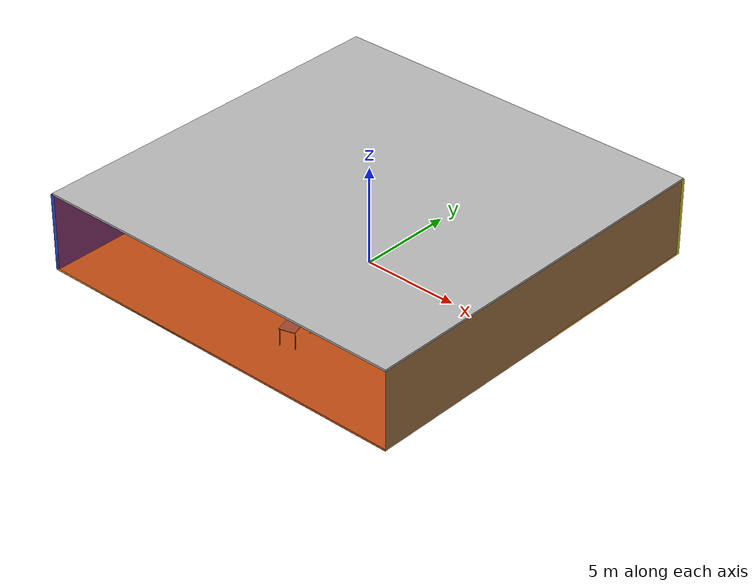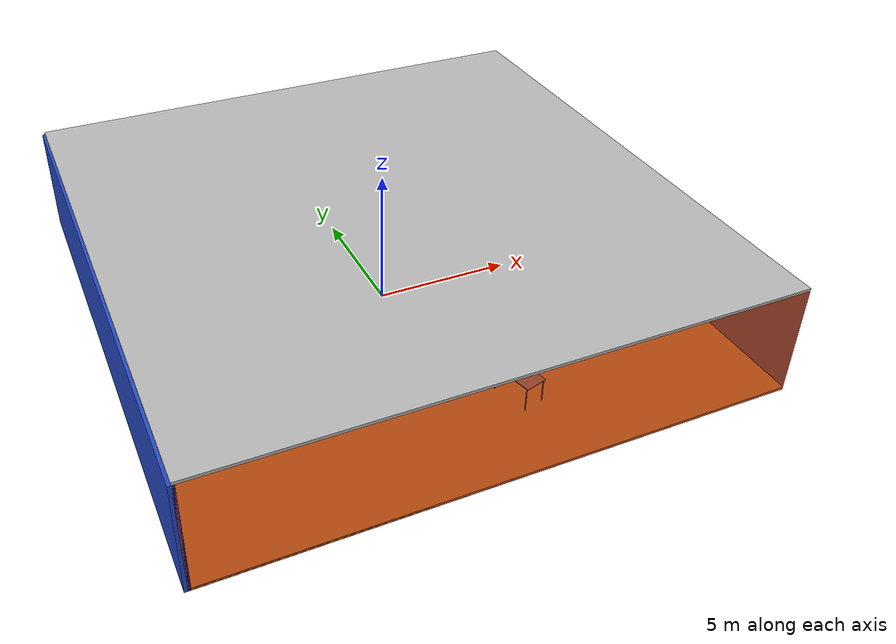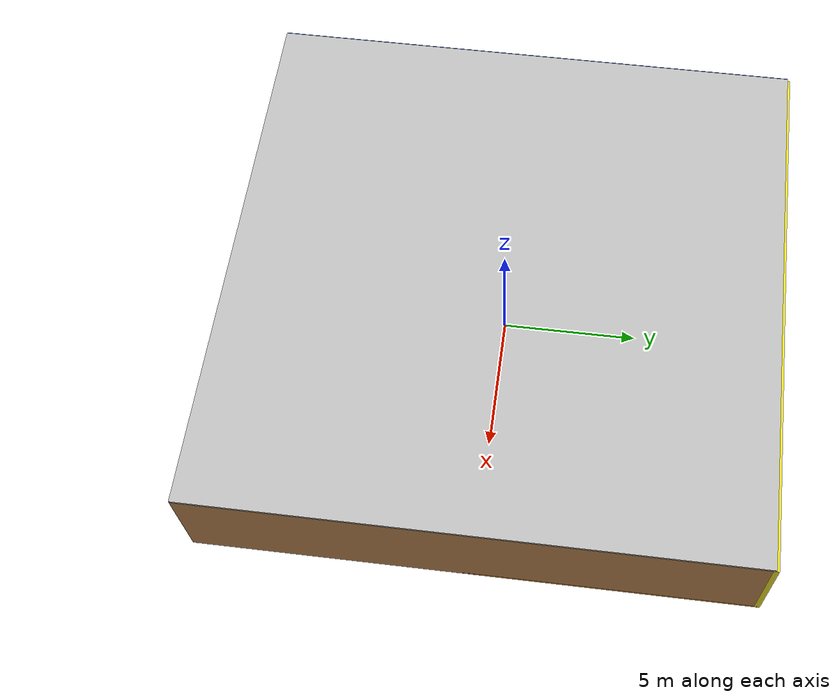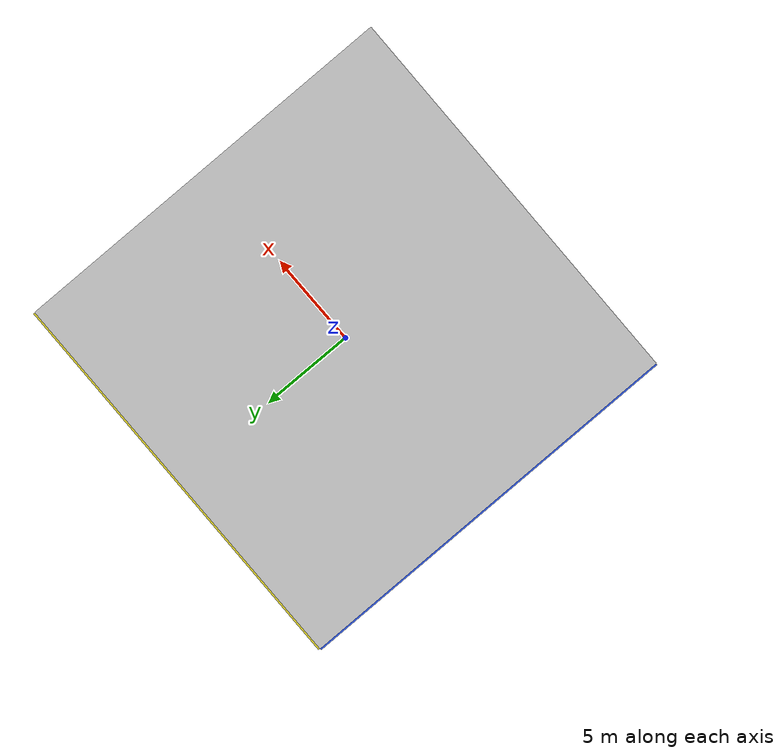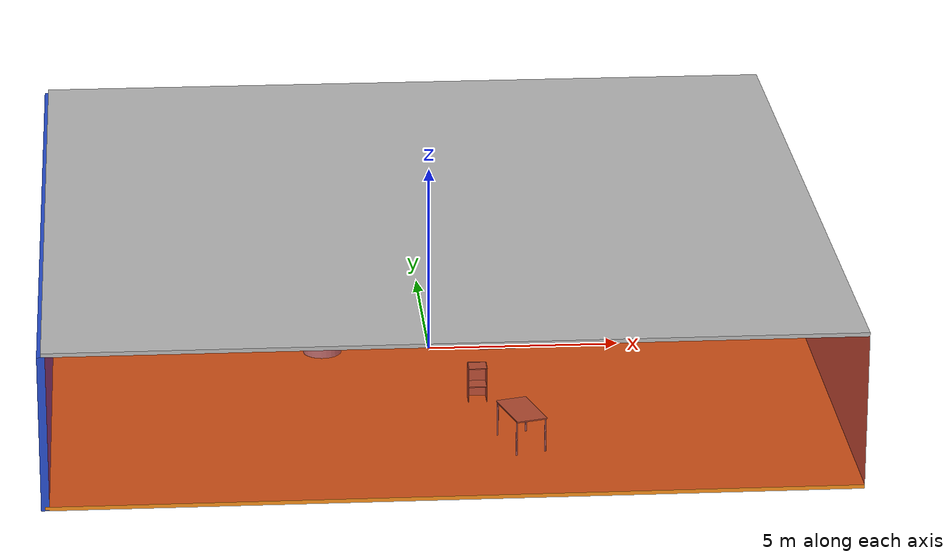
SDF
<sdf version="1.4">
 <world name="default">
  <physics type="ode">
   <max_step_size>0.001</max_step_size>
   <real_time_factor>1</real_time_factor>
   <real_time_update_rate>1000</real_time_update_rate>
   <gravity>0 0 -9.8</gravity>
  </physics>
  <scene><ambient>0.4 0.4 0.4 1</ambient><background>0.7 0.7 0.7 1</background><shadows>1</shadows></scene>
  <model name="Surrounding">
   <static>1</static>
   <link name="Ceiling">
    <collision name="Ceiling_Collision"><geometry><box><size>20 20 0.1</size></box></geometry></collision>
    <visual name="Ceiling_Visual">
     <geometry><box><size>20 20 0.1</size></box></geometry>
     <material>
      <script><uri>file://media/materials/scripts/gazebo.material</uri><name>Gazebo/CloudySky</name></script>
     </material>
    </visual>
    <pose>0 0 4.05 0 0 0</pose>
   </link>
   <link name="Wall_South">
    <collision name="Wall_South_Collision">
     <geometry><box><size>20 0 4</size></box></geometry>
     <pose>0 0 2 0 -0 0</pose>
    </collision>
    <visual name="Wall_South_Visual">
     <pose>0 0 2 0 -0 0</pose>
     <geometry><box><size>20 0 4</size></box></geometry>
     <material>
      <script><uri>file://media/materials/scripts/gazebo.material</uri><name>Gazebo/RedTransparent</name></script>
     </material>
    </visual>
    <velocity_decay><linear>0</linear><angular>0</angular></velocity_decay>
    <pose>0 -10 0 0 -0 0</pose>
   </link>
   <link name="Wall_East">
    <collision name="Wall_21_Collision">
     <geometry><box><size>20 0 4</size></box></geometry>
     <pose>0 0 2 0 -0 0</pose>
    </collision>
    <visual name="Wall_21_Visual">
     <pose>0 0 2 0 -0 0</pose>
     <geometry><box><size>20 0 4</size></box></geometry>
     <material>
      <script><uri>file://media/materials/scripts/gazebo.material</uri><name>Gazebo/Wood</name></script>
     </material>
    </visual>
    <velocity_decay><linear>0</linear><angular>0</angular></velocity_decay>
    <pose>10 0 0 0 -0 1.5708</pose>
   </link>
   <link name="Wall_North">
    <collision name="Wall_22_Collision">
     <geometry><box><size>20 0.2 4</size></box></geometry>
     <pose>0 0 2 0 -0 0</pose>
    </collision>
    <visual name="Wall_22_Visual">
     <pose>0 0 2 0 -0 0</pose>
     <geometry><box><size>20 0.2 4</size></box></geometry>
     <material>
      <script><uri>file://media/materials/scripts/gazebo.material</uri><name>Gazebo/YellowGlow</name></script>
     </material>
    </visual>
    <velocity_decay><linear>0</linear><angular>0</angular></velocity_decay>
    <pose>0 10 0 0 -0 0</pose>
   </link>
   <link name="Wall_West">
    <collision name="Wall_23_Collision">
     <geometry><box><size>20 0.2 4</size></box></geometry>
     <pose>0 0 2 0 -0 0</pose>
    </collision>
    <visual name="Wall_23_Visual">
     <pose>0 0 2 0 -0 0</pose>
     <geometry><box><size>20 0.2 4</size></box></geometry>
     <material>
      <script><uri>file://media/materials/scripts/gazebo.material</uri><name>Gazebo/BlueLaser</name></script>
     </material>
    </visual>
    <velocity_decay><linear>0</linear><angular>0</angular></velocity_decay>
    <pose>-10 0 0 0 0 -1.5708</pose>
   </link>
   <link name="Ground_link">
    <collision name="collision">
     <pose>0 0 .05 0 -0 0</pose>
     <geometry><box><size>20 20 0.1</size></box></geometry>
    </collision>
    <visual name="visual">
     <pose>0 0 .05 0 -0 0</pose>
     <geometry><box><size>20 20 0.1</size></box></geometry>
     <material>
      <script><uri>file://media/materials/scripts/gazebo.material</uri><name>Gazebo/Orange</name></script>
     </material>
    </visual>
   </link>
   <static>1</static>
  </model>
  <spherical_coordinates>
   <surface_model>EARTH_WGS84</surface_model>
   <latitude_deg>0</latitude_deg>
   <longitude_deg>0</longitude_deg>
   <elevation>0</elevation>
   <heading_deg>0</heading_deg>
  </spherical_coordinates>
  <light name="lightball_0" type="diffuse">
   <diffuse>0.8 0.8 0.8 1</diffuse>
   <specular>0.2 0.2 0.2 1</specular>
   <attenuation>
    <range>100</range>
    <constant>0.7</constant>
    <linear>0.01</linear>
    <quadratic>0.001</quadratic>
   </attenuation>
   <direction>-0.5 0.1 -0.9</direction>
   <pose>-8.1750219609 -0.994581331632 3.76717767849 0 0 0</pose>
  </light>
  <light name="lightball_1" type="diffuse">
   <diffuse>0.8 0.8 0.8 1</diffuse>
   <specular>0.2 0.2 0.2 1</specular>
   <attenuation>
    <range>100</range>
    <constant>0.7</constant>
    <linear>0.01</linear>
    <quadratic>0.001</quadratic>
   </attenuation>
   <direction>-0.5 0.1 -0.9</direction>
   <pose>-7.49363259658 -1.19465149656 1.64758789317 0 0 0</pose>
  </light>
  <light name="lightball_2" type="diffuse">
   <diffuse>0.8 0.8 0.8 1</diffuse>
   <specular>0.2 0.2 0.2 1</specular>
   <attenuation>
    <range>100</range>
    <constant>0.7</constant>
    <linear>0.01</linear>
    <quadratic>0.001</quadratic>
   </attenuation>
   <direction>-0.5 0.1 -0.9</direction>
   <pose>-3.76112519172 0.0347102981407 3.82514936522 0 0 0</pose>
  </light>
  <light name="lightball_3" type="diffuse">
   <diffuse>0.8 0.8 0.8 1</diffuse>
   <specular>0.2 0.2 0.2 1</specular>
   <attenuation>
    <range>100</range>
    <constant>0.7</constant>
    <linear>0.01</linear>
    <quadratic>0.001</quadratic>
   </attenuation>
   <direction>-0.5 0.1 -0.9</direction>
   <pose>-5.76501389016 4.88695822047 1.07834786567 0 0 0</pose>
  </light>
  <light name="lightball_4" type="diffuse">
   <diffuse>0.8 0.8 0.8 1</diffuse>
   <specular>0.2 0.2 0.2 1</specular>
   <attenuation>
    <range>100</range>
    <constant>0.7</constant>
    <linear>0.01</linear>
    <quadratic>0.001</quadratic>
   </attenuation>
   <direction>-0.5 0.1 -0.9</direction>
   <pose>5.35878651306 3.44587681985 1.88586030055 0 0 0</pose>
  </light>
  <light name="lightball_5" type="diffuse">
   <diffuse>0.8 0.8 0.8 1</diffuse>
   <specular>0.2 0.2 0.2 1</specular>
   <attenuation>
    <range>100</range>
    <constant>0.7</constant>
    <linear>0.01</linear>
    <quadratic>0.001</quadratic>
   </attenuation>
   <direction>-0.5 0.1 -0.9</direction>
   <pose>4.59006269359 4.66943095998 3.23542803439 0 0 0</pose>
  </light>
  <light name="lightball_6" type="diffuse">
   <diffuse>0.8 0.8 0.8 1</diffuse>
   <specular>0.2 0.2 0.2 1</specular>
   <attenuation>
    <range>100</range>
    <constant>0.7</constant>
    <linear>0.01</linear>
    <quadratic>0.001</quadratic>
   </attenuation>
   <direction>-0.5 0.1 -0.9</direction>
   <pose>9.98481536459 2.72520035438 1.58770300228 0 0 0</pose>
  </light>
  <light name="lightball_7" type="diffuse">
   <diffuse>0.8 0.8 0.8 1</diffuse>
   <specular>0.2 0.2 0.2 1</specular>
   <attenuation>
    <range>100</range>
    <constant>0.7</constant>
    <linear>0.01</linear>
    <quadratic>0.001</quadratic>
   </attenuation>
   <direction>-0.5 0.1 -0.9</direction>
   <pose>-9.04362554884 1.66253579772 2.91459784075 0 0 0</pose>
  </light>
  <include>
   <uri>model://robocup_3Dsim_goal</uri>
   <pose>-3.921695372 6.83870520399 0 0 0 2.77781894821</pose>
  </include>
  <include>
   <uri>model://textured_shapes</uri>
   <pose>-1.97351189887 0.939967721864 0 0 0 2.53328341457</pose>
  </include>
  <include><uri>model://cabinet</uri><pose>-1.48149367268 8.26386178551 0 0 0 1.3881551085</pose></include>
  <include><uri>model://table</uri><pose>1.8441642237 -6.81627438869 0 0 0 1.84470332793</pose></include>
  <include><uri>model://cabinet</uri><pose>0.974134088673 -3.83541622137 0 0 0 1.55980407293</pose></include>
  <include>
   <uri>model://textured_shapes</uri>
   <pose>1.66324305728 1.5641296236 0 0 0 0.0503319916211</pose>
  </include>
  <include><uri>model://cabinet</uri><pose>1.49423997502 7.85553278691 0 0 0 0.705730093492</pose></include>
 </world>
</sdf>

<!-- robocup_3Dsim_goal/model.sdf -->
<sdf version="1.5">
  <model name="robocup_3d_goal">
    <static>true</static>
    <link name="left_post">
      <pose>0 1.05 0.45 0 0 0</pose>
      <collision name="collision">
        <geometry>
          <cylinder>
            <radius>0.05</radius>
            <length>0.9</length>
          </cylinder>
        </geometry>
      </collision>
      <visual name="visual">
        <geometry>
          <cylinder>
            <radius>0.05</radius>
            <length>0.9</length>
          </cylinder>
        </geometry>
        <material>
          <script>
            <uri>file://media/materials/scripts/gazebo.material</uri>
            <name>Gazebo/ZincYellow</name>
          </script>
        </material>
      </visual>
    </link>
    <link name="left_support_horiz_lower">
      <pose>0.30 1.05 0.01 0 0 0</pose>
      <collision name="collision">
        <geometry>
          <box>
            <size>0.50 0.02 0.02</size>
          </box>
        </geometry>
      </collision>
      <visual name="visual">
        <geometry>
          <box>
            <size>0.50 0.02 0.02</size>
          </box>
        </geometry>
        <material>
          <script>
            <uri>file://media/materials/scripts/gazebo.material</uri>
            <name>Gazebo/White</name>
          </script>
        </material>
      </visual>
    </link>
    <link name="left_support_horiz_upper">
      <pose>0.30 1.05 0.79 0 0 0</pose>
      <collision name="collision">
        <geometry>
          <box>
            <size>0.50 0.02 0.02</size>
          </box>
        </geometry>
      </collision>
      <visual name="visual">
        <geometry>
          <box>
            <size>0.50 0.02 0.02</size>
          </box>
        </geometry>
        <material>
          <script>
            <uri>file://media/materials/scripts/gazebo.material</uri>
            <name>Gazebo/White</name>
          </script>
        </material>
      </visual>
    </link>
    <link name="left_support_vertical">
      <pose>0.56 1.05 0.4 0 1.5708 0</pose>
      <collision name="collision">
        <geometry>
          <box>
            <size>0.80 0.02 0.02</size>
          </box>
        </geometry>
      </collision>
      <visual name="visual">
        <geometry>
          <box>
            <size>0.80 0.02 0.02</size>
          </box>
        </geometry>
        <material>
          <script>
            <uri>file://media/materials/scripts/gazebo.material</uri>
            <name>Gazebo/White</name>
          </script>
        </material>
      </visual>
    </link>
    <link name="right_support_horiz_lower">
      <pose>0.30 -1.05 0.01 0 0 0</pose>
      <collision name="collision">
        <geometry>
          <box>
            <size>0.50 0.02 0.02</size>
          </box>
        </geometry>
      </collision>
      <visual name="visual">
        <geometry>
          <box>
            <size>0.50 0.02 0.02</size>
          </box>
        </geometry>
        <material>
          <script>
            <uri>file://media/materials/scripts/gazebo.material</uri>
            <name>Gazebo/White</name>
          </script>
        </material>
      </visual>
    </link>
    <link name="right_support_horiz_upper">
      <pose>0.30 -1.05 0.79 0 0 0</pose>
      <collision name="collision">
        <geometry>
          <box>
            <size>0.50 0.02 0.02</size>
          </box>
        </geometry>
      </collision>
      <visual name="visual">
        <geometry>
          <box>
            <size>0.50 0.02 0.02</size>
          </box>
        </geometry>
        <material>
          <script>
            <uri>file://media/materials/scripts/gazebo.material</uri>
            <name>Gazebo/White</name>
          </script>
        </material>
      </visual>
    </link>
    <link name="right_support_vertical">
      <pose>0.56 -1.05 0.4 0 1.5708 0</pose>
      <collision name="collision">
        <geometry>
          <box>
            <size>0.80 0.02 0.02</size>
          </box>
        </geometry>
      </collision>
      <visual name="visual">
        <geometry>
          <box>
            <size>0.80 0.02 0.02</size>
          </box>
        </geometry>
        <material>
          <script>
            <uri>file://media/materials/scripts/gazebo.material</uri>
            <name>Gazebo/White</name>
          </script>
        </material>
      </visual>
    </link>
    <link name="center_support_horiz_lower">
      <pose>0.56 0 0.01 0 1.5708 0</pose>
      <collision name="collision">
        <geometry>
          <box>
            <size>0.02 2.08 0.02</size>
          </box>
        </geometry>
      </collision>
      <visual name="visual">
        <geometry>
          <box>
            <size>0.02 2.08 0.02</size>
          </box>
        </geometry>
        <material>
          <script>
            <uri>file://media/materials/scripts/gazebo.material</uri>
            <name>Gazebo/White</name>
          </script>
        </material>
      </visual>
    </link>
    <link name="center_support_horiz_upper">
      <pose>0.56 0 0.79 0 1.5708 0</pose>
      <collision name="collision">
        <geometry>
          <box>
            <size>0.02 2.08 0.02</size>
          </box>
        </geometry>
      </collision>
      <visual name="visual">
        <geometry>
          <box>
            <size>0.02 2.08 0.02</size>
          </box>
        </geometry>
        <material>
          <script>
            <uri>file://media/materials/scripts/gazebo.material</uri>
            <name>Gazebo/White</name>
          </script>
        </material>
      </visual>
    </link>
    <link name="right_post">
      <pose>0 -1.05 0.45 0 0 0</pose>
      <collision name="collision">
        <geometry>
          <cylinder>
            <radius>0.05</radius>
            <length>0.9</length>
          </cylinder>
        </geometry>
      </collision>
      <visual name="visual">
        <geometry>
          <cylinder>
            <radius>0.05</radius>
            <length>0.9</length>
          </cylinder>
        </geometry>
        <material>
          <script>
            <uri>file://media/materials/scripts/gazebo.material</uri>
            <name>Gazebo/ZincYellow</name>
          </script>
        </material>
      </visual>
    </link>
    <link name="crossbar">
      <pose>0 0 0.85 1.57 1.57 0</pose>
      <collision name="collision">
        <geometry>
          <cylinder>
            <radius>0.05</radius>
            <length>2.0</length>
          </cylinder>
        </geometry>
      </collision>
      <visual name="visual">
        <geometry>
          <cylinder>
            <radius>0.05</radius>
            <length>2.0</length>
          </cylinder>
        </geometry>
        <material>
          <script>
            <uri>file://media/materials/scripts/gazebo.material</uri>
            <name>Gazebo/ZincYellow</name>
          </script>
        </material>
      </visual>
    </link>
    <link name="center_net">
      <pose>0.56 0 0.40 0 0 0</pose>
      <collision name="collision">
        <geometry>
          <box>
            <size>0.01 2.1 0.80</size>
          </box>
        </geometry>
      </collision>
      <visual name="visual">
        <geometry>
          <box>
            <size>0.01 2.1 0.80</size>
          </box>
        </geometry>
        <material>
          <script>
            <uri>model://../model_source/models/robocup09_spl_field/materials/scripts/</uri>
            <uri>model://../model_source/models/robocup09_spl_field/materials/textures/</uri>
            <name>RoboCup/Net</name>
          </script>
        </material>
      </visual>
    </link>
    <link name="left_net">
      <pose>0.30 1.05 0.40 0 0 0</pose>
      <collision name="collision">
        <geometry>
          <box>
            <size>0.50 0.01 0.76</size>
          </box>
        </geometry>
      </collision>
      <visual name="visual">
        <geometry>
          <box>
            <size>0.50 0.01 0.76</size>
          </box>
        </geometry>
        <material>
          <script>
            <uri>model://../model_source/models/robocup09_spl_field/materials/scripts/</uri>
            <uri>model://../model_source/models/robocup09_spl_field/materials/textures/</uri>
            <name>RoboCup/Net</name>
          </script>
        </material>
      </visual>
    </link>
    <link name="right_net">
      <pose>0.30 -1.05 0.40 0 0 0</pose>
      <collision name="collision">
        <geometry>
          <box>
            <size>0.50 0.01 0.76</size>
          </box>
        </geometry>
      </collision>
      <visual name="visual">
        <geometry>
          <box>
            <size>0.50 0.01 0.76</size>
          </box>
        </geometry>
        <material>
          <script>
            <uri>model://../model_source/models/robocup09_spl_field/materials/scripts/</uri>
            <uri>model://../model_source/models/robocup09_spl_field/materials/textures/</uri>
            <name>RoboCup/Net</name>
          </script>
        </material>
      </visual>
    </link>
  </model>
</sdf>

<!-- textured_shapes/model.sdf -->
<sdf version="1.6">
  <model name="textured_shapes">
    <pose>0 0 0.5 0 0 0</pose>
    <link name="box">
      <pose>0 -1.5 0 0 0 0</pose>
      <collision name="collision">
        <geometry>
          <box>
            <size>1 1 1</size>
          </box>
        </geometry>
      </collision>
      <visual name="visual">
        <geometry>
          <box>
            <size>1 1 1</size>
          </box>
        </geometry>
        <material>
          <script>
            <uri>model://../model_source/models/textured_shapes/materials/scripts</uri>
            <uri>model://../model_source/models/textured_shapes/materials/textures</uri>
            <name>TexturedShape/Squares</name>
          </script>
        </material>
      </visual>
    </link>
    <link name="sphere">
      <collision name="collision">
        <geometry>
          <sphere>
            <radius>0.5</radius>
          </sphere>
        </geometry>
      </collision>
      <visual name="visual">
        <geometry>
          <sphere>
            <radius>0.5</radius>
          </sphere>
        </geometry>
        <material>
          <script>
            <uri>model://../model_source/models/textured_shapes/materials/scripts</uri>
            <uri>model://../model_source/models/textured_shapes/materials/textures</uri>
            <name>TexturedShape/Squares</name>
          </script>
        </material>
      </visual>
    </link>
    <link name="cylinder">
      <pose>0 1.5 0 0 0 0</pose>
      <collision name="collision">
        <geometry>
          <cylinder>
            <radius>0.5</radius>
            <length>1</length>
          </cylinder>
        </geometry>
      </collision>
      <visual name="visual">
        <geometry>
          <cylinder>
            <radius>0.5</radius>
            <length>1</length>
          </cylinder>
        </geometry>
        <material>
          <script>
            <uri>model://../model_source/models/textured_shapes/materials/scripts</uri>
            <uri>model://../model_source/models/textured_shapes/materials/textures</uri>
            <name>TexturedShape/Squares</name>
          </script>
        </material>
      </visual>
    </link>
  </model>
</sdf>

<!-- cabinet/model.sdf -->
<sdf version="1.5">
  <model name="cabinet">
    <static>true</static>
    <link name="cabinet_bottom_plate">
      <inertial>
        <pose>0 0 -1 0 0 0</pose>
        <inertia>
          <ixx>2.050000</ixx>
          <ixy>0</ixy>
          <ixz>0</ixz>
          <iyy>2.050000</iyy>
          <iyz>0</iyz>
          <izz>2.050000</izz>
        </inertia>
        <mass>25.000000</mass>
      </inertial>
      <collision name="cabinet_bottom_plate_geom">
        <pose>0 0 0.010000 0 0 0</pose>
        <geometry>
          <box>
            <size>0.450000 0.450000 0.020000</size>
          </box>
        </geometry>
      </collision>
      <visual name="cabinet_bottom_plate_geom_visual">
        <pose>0 0 0.010000 0 0 0</pose>
        <geometry>
          <box>
            <size>0.450000 0.450000 0.020000</size>
          </box>
        </geometry>
        <material>
          <script>
            <uri>model://media/materials/scripts/gazebo.material</uri>
            <name>Gazebo/Wood</name>
          </script>
        </material>
      </visual>
      <collision name="cabinet_bottom_plate_geom_cabinet_back_plate">
        <pose>0.235000 0 0.510000 0 0 0</pose>
        <geometry>
          <box>
            <size>0.020000 0.450000 1.020000</size>
          </box>
        </geometry>
      </collision>
      <visual name="cabinet_bottom_plate_geom_cabinet_back_plate_visual">
        <pose>0.235000 0 0.510000 0 0 0</pose>
        <geometry>
          <box>
            <size>0.020000 0.450000 1.020000</size>
          </box>
        </geometry>
        <material>
          <script>
            <uri>model://media/materials/scripts/gazebo.material</uri>
            <name>Gazebo/Wood</name>
          </script>
        </material>
      </visual>
      <collision name="cabinet_bottom_plate_geom_cabinet_left_plate">
        <pose>0 0.235000 0.510000 0 0 0</pose>
        <geometry>
          <box>
            <size>0.450000 0.020000 1.020000</size>
          </box>
        </geometry>
      </collision>
      <visual name="cabinet_bottom_plate_geom_cabinet_left_plate_visual">
        <pose>0 0.235000 0.510000 0 0 0</pose>
        <geometry>
          <box>
            <size>0.450000 0.020000 1.020000</size>
          </box>
        </geometry>
        <material>
          <script>
            <uri>model://media/materials/scripts/gazebo.material</uri>
            <name>Gazebo/Wood</name>
          </script>
        </material>
      </visual>
      <collision name="cabinet_bottom_plate_geom_cabinet_middle_plate">
        <pose>0 0 0.510000 0 0 0</pose>
        <geometry>
          <box>
            <size>0.450000 0.450000 0.020000</size>
          </box>
        </geometry>
      </collision>
      <visual name="cabinet_bottom_plate_geom_cabinet_middle_plate_visual">
        <pose>0 0 0.510000 0 0 0</pose>
        <geometry>
          <box>
            <size>0.450000 0.450000 0.020000</size>
          </box>
        </geometry>
        <material>
          <script>
            <uri>model://media/materials/scripts/gazebo.material</uri>
            <name>Gazebo/Wood</name>
          </script>
        </material>
      </visual>
      <collision name="cabinet_bottom_plate_geom_cabinet_right_plate">
        <pose>0 -0.235000 0.510000 0 0 0</pose>
        <geometry>
          <box>
            <size>0.450000 0.020000 1.020000</size>
          </box>
        </geometry>
      </collision>
      <visual name="cabinet_bottom_plate_geom_cabinet_right_plate_visual">
        <pose>0 -0.235000 0.510000 0 0 0</pose>
        <geometry>
          <box>
            <size>0.450000 0.020000 1.020000</size>
          </box>
        </geometry>
        <material>
          <script>
            <uri>model://media/materials/scripts/gazebo.material</uri>
            <name>Gazebo/Wood</name>
          </script>
        </material>
      </visual>
      <collision name="cabinet_bottom_plate_geom_cabinet_top_plate">
        <pose>0 0 1.010000 0 0 0</pose>
        <geometry>
          <box>
            <size>0.450000 0.450000 0.020000</size>
          </box>
        </geometry>
      </collision>
      <visual name="cabinet_bottom_plate_geom_cabinet_top_plate_visual">
        <pose>0 0 1.010000 0 0 0</pose>
        <geometry>
          <box>
            <size>0.450000 0.450000 0.020000</size>
          </box>
        </geometry>
        <material>
          <script>
            <uri>model://media/materials/scripts/gazebo.material</uri>
            <name>Gazebo/Wood</name>
          </script>
        </material>
      </visual>
    </link>
  </model>
</sdf>

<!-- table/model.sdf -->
<sdf version="1.5">
  <model name="table">
    <static>true</static>
    <link name="link">
      <collision name="surface">
        <pose>0 0 1.0 0 0 0</pose>
        <geometry>
          <box>
            <size>1.5 0.8 0.03</size>
          </box>
        </geometry>
        <surface>
          <friction>
            <ode>
              <mu>0.6</mu>
              <mu2>0.6</mu2>
            </ode>
          </friction>
        </surface>
      </collision>
      <visual name="visual1">
        <pose>0 0 1.0 0 0 0</pose>
        <geometry>
          <box>
            <size>1.5 0.8 0.03</size>
          </box>
        </geometry>
        <material>
          <script>
            <uri>model://media/materials/scripts/gazebo.material</uri>
            <name>Gazebo/Wood</name>
          </script>
        </material>
      </visual>
      <collision name="front_left_leg">
        <pose>0.68 0.38 0.5 0 0 0</pose>
        <geometry>
          <cylinder>
            <radius>0.02</radius>
            <length>1.0</length>
          </cylinder>
        </geometry>
      </collision>
      <visual name="front_left_leg">
        <pose>0.68 0.38 0.5 0 0 0</pose>
        <geometry>
          <cylinder>
            <radius>0.02</radius>
            <length>1.0</length>
          </cylinder>
        </geometry>
        <material>
          <script>
            <uri>model://media/materials/scripts/gazebo.material</uri>
            <name>Gazebo/Grey</name>
          </script>
        </material>
      </visual>
      <collision name="front_right_leg">
        <pose>0.68 -0.38 0.5 0 0 0</pose>
        <geometry>
          <cylinder>
            <radius>0.02</radius>
            <length>1.0</length>
          </cylinder>
        </geometry>
      </collision>
      <visual name="front_right_leg">
        <pose>0.68 -0.38 0.5 0 0 0</pose>
        <geometry>
          <cylinder>
            <radius>0.02</radius>
            <length>1.0</length>
          </cylinder>
        </geometry>
        <material>
          <script>
            <uri>model://media/materials/scripts/gazebo.material</uri>
            <name>Gazebo/Grey</name>
          </script>
        </material>
      </visual>
      <collision name="back_right_leg">
        <pose>-0.68 -0.38 0.5 0 0 0</pose>
        <geometry>
          <cylinder>
            <radius>0.02</radius>
            <length>1.0</length>
          </cylinder>
        </geometry>
      </collision>
      <visual name="back_right_leg">
        <pose>-0.68 -0.38 0.5 0 0 0</pose>
        <geometry>
          <cylinder>
            <radius>0.02</radius>
            <length>1.0</length>
          </cylinder>
        </geometry>
        <material>
          <script>
            <uri>model://media/materials/scripts/gazebo.material</uri>
            <name>Gazebo/Grey</name>
          </script>
        </material>
      </visual>
      <collision name="back_left_leg">
        <pose>-0.68 0.38 0.5 0 0 0</pose>
        <geometry>
          <cylinder>
            <radius>0.02</radius>
            <length>1.0</length>
          </cylinder>
        </geometry>
      </collision>
      <visual name="back_left_leg">
        <pose>-0.68 0.38 0.5 0 0 0</pose>
        <geometry>
          <cylinder>
            <radius>0.02</radius>
            <length>1.0</length>
          </cylinder>
        </geometry>
        <material>
          <script>
            <uri>model://media/materials/scripts/gazebo.material</uri>
            <name>Gazebo/Grey</name>
          </script>
        </material>
      </visual>
    </link>
  </model>
</sdf>
